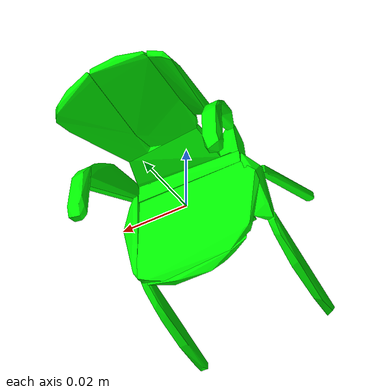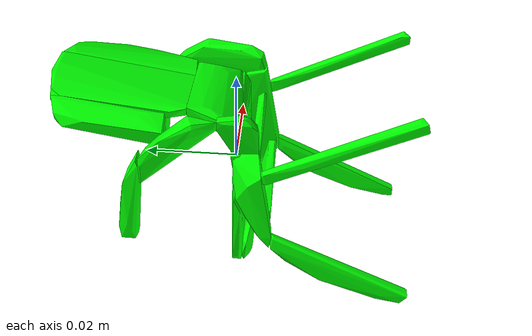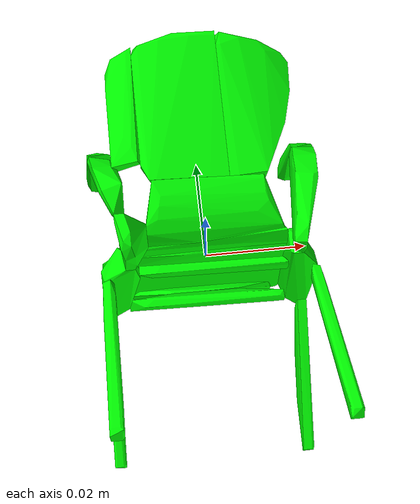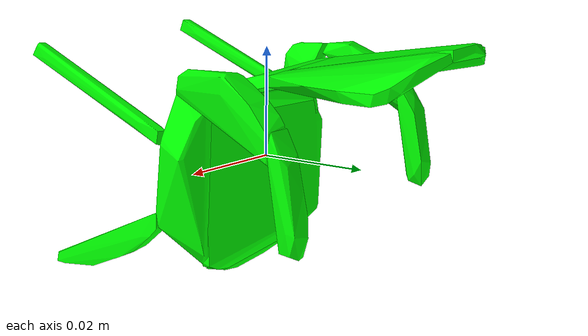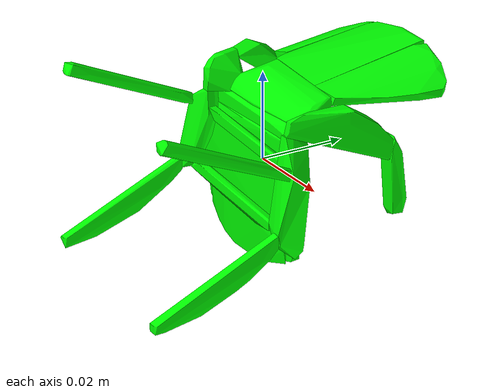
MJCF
<mujoco model="shapenet29-3">
  <asset>
    <mesh file="meshes/shapenet29-3/shapenet29-3_0.stl" name="shapenet29-3_0" scale="0.1 0.1 0.1"/>
    <mesh file="meshes/shapenet29-3/shapenet29-3_1.stl" name="shapenet29-3_1" scale="0.1 0.1 0.1"/>
    <mesh file="meshes/shapenet29-3/shapenet29-3_2.stl" name="shapenet29-3_2" scale="0.1 0.1 0.1"/>
    <mesh file="meshes/shapenet29-3/shapenet29-3_3.stl" name="shapenet29-3_3" scale="0.1 0.1 0.1"/>
    <mesh file="meshes/shapenet29-3/shapenet29-3_4.stl" name="shapenet29-3_4" scale="0.1 0.1 0.1"/>
    <mesh file="meshes/shapenet29-3/shapenet29-3_5.stl" name="shapenet29-3_5" scale="0.1 0.1 0.1"/>
    <mesh file="meshes/shapenet29-3/shapenet29-3_6.stl" name="shapenet29-3_6" scale="0.1 0.1 0.1"/>
    <mesh file="meshes/shapenet29-3/shapenet29-3_7.stl" name="shapenet29-3_7" scale="0.1 0.1 0.1"/>
    <mesh file="meshes/shapenet29-3/shapenet29-3_8.stl" name="shapenet29-3_8" scale="0.1 0.1 0.1"/>
    <mesh file="meshes/shapenet29-3/shapenet29-3_9.stl" name="shapenet29-3_9" scale="0.1 0.1 0.1"/>
    <mesh file="meshes/shapenet29-3/shapenet29-3_10.stl" name="shapenet29-3_10" scale="0.1 0.1 0.1"/>
    <mesh file="meshes/shapenet29-3/shapenet29-3_11.stl" name="shapenet29-3_11" scale="0.1 0.1 0.1"/>
    <mesh file="meshes/shapenet29-3/shapenet29-3_12.stl" name="shapenet29-3_12" scale="0.1 0.1 0.1"/>
    <mesh file="meshes/shapenet29-3/shapenet29-3_13.stl" name="shapenet29-3_13" scale="0.1 0.1 0.1"/>
    <mesh file="meshes/shapenet29-3/shapenet29-3_14.stl" name="shapenet29-3_14" scale="0.1 0.1 0.1"/>
    <mesh file="meshes/shapenet29-3/shapenet29-3_15.stl" name="shapenet29-3_15" scale="0.1 0.1 0.1"/>
    <mesh file="meshes/shapenet29-3/shapenet29-3_16.stl" name="shapenet29-3_16" scale="0.1 0.1 0.1"/>
    <mesh file="meshes/shapenet29-3/shapenet29-3_17.stl" name="shapenet29-3_17" scale="0.1 0.1 0.1"/>
    <mesh file="meshes/shapenet29-3/shapenet29-3_18.stl" name="shapenet29-3_18" scale="0.1 0.1 0.1"/>
    <mesh file="meshes/shapenet29-3/shapenet29-3_19.stl" name="shapenet29-3_19" scale="0.1 0.1 0.1"/>
  </asset>
  <worldbody>
    <body>
      <body name="collision">
        <geom pos="0 0 0" mesh="shapenet29-3_0" type="mesh" solimp="0.998 0.998 0.001" solref="0.001 1" density="100" friction="0.95 0.3 0.1" rgba="0 1 0 1" group="1" condim="4"/>
        <geom pos="0 0 0" mesh="shapenet29-3_1" type="mesh" solimp="0.998 0.998 0.001" solref="0.001 1" density="100" friction="0.95 0.3 0.1" rgba="0 1 0 1" group="1" condim="4"/>
        <geom pos="0 0 0" mesh="shapenet29-3_2" type="mesh" solimp="0.998 0.998 0.001" solref="0.001 1" density="100" friction="0.95 0.3 0.1" rgba="0 1 0 1" group="1" condim="4"/>
        <geom pos="0 0 0" mesh="shapenet29-3_3" type="mesh" solimp="0.998 0.998 0.001" solref="0.001 1" density="100" friction="0.95 0.3 0.1" rgba="0 1 0 1" group="1" condim="4"/>
        <geom pos="0 0 0" mesh="shapenet29-3_4" type="mesh" solimp="0.998 0.998 0.001" solref="0.001 1" density="100" friction="0.95 0.3 0.1" rgba="0 1 0 1" group="1" condim="4"/>
        <geom pos="0 0 0" mesh="shapenet29-3_5" type="mesh" solimp="0.998 0.998 0.001" solref="0.001 1" density="100" friction="0.95 0.3 0.1" rgba="0 1 0 1" group="1" condim="4"/>
        <geom pos="0 0 0" mesh="shapenet29-3_6" type="mesh" solimp="0.998 0.998 0.001" solref="0.001 1" density="100" friction="0.95 0.3 0.1" rgba="0 1 0 1" group="1" condim="4"/>
        <geom pos="0 0 0" mesh="shapenet29-3_7" type="mesh" solimp="0.998 0.998 0.001" solref="0.001 1" density="100" friction="0.95 0.3 0.1" rgba="0 1 0 1" group="1" condim="4"/>
        <geom pos="0 0 0" mesh="shapenet29-3_8" type="mesh" solimp="0.998 0.998 0.001" solref="0.001 1" density="100" friction="0.95 0.3 0.1" rgba="0 1 0 1" group="1" condim="4"/>
        <geom pos="0 0 0" mesh="shapenet29-3_9" type="mesh" solimp="0.998 0.998 0.001" solref="0.001 1" density="100" friction="0.95 0.3 0.1" rgba="0 1 0 1" group="1" condim="4"/>
        <geom pos="0 0 0" mesh="shapenet29-3_10" type="mesh" solimp="0.998 0.998 0.001" solref="0.001 1" density="100" friction="0.95 0.3 0.1" rgba="0 1 0 1" group="1" condim="4"/>
        <geom pos="0 0 0" mesh="shapenet29-3_11" type="mesh" solimp="0.998 0.998 0.001" solref="0.001 1" density="100" friction="0.95 0.3 0.1" rgba="0 1 0 1" group="1" condim="4"/>
        <geom pos="0 0 0" mesh="shapenet29-3_12" type="mesh" solimp="0.998 0.998 0.001" solref="0.001 1" density="100" friction="0.95 0.3 0.1" rgba="0 1 0 1" group="1" condim="4"/>
        <geom pos="0 0 0" mesh="shapenet29-3_13" type="mesh" solimp="0.998 0.998 0.001" solref="0.001 1" density="100" friction="0.95 0.3 0.1" rgba="0 1 0 1" group="1" condim="4"/>
        <geom pos="0 0 0" mesh="shapenet29-3_14" type="mesh" solimp="0.998 0.998 0.001" solref="0.001 1" density="100" friction="0.95 0.3 0.1" rgba="0 1 0 1" group="1" condim="4"/>
        <geom pos="0 0 0" mesh="shapenet29-3_15" type="mesh" solimp="0.998 0.998 0.001" solref="0.001 1" density="100" friction="0.95 0.3 0.1" rgba="0 1 0 1" group="1" condim="4"/>
        <geom pos="0 0 0" mesh="shapenet29-3_16" type="mesh" solimp="0.998 0.998 0.001" solref="0.001 1" density="100" friction="0.95 0.3 0.1" rgba="0 1 0 1" group="1" condim="4"/>
        <geom pos="0 0 0" mesh="shapenet29-3_17" type="mesh" solimp="0.998 0.998 0.001" solref="0.001 1" density="100" friction="0.95 0.3 0.1" rgba="0 1 0 1" group="1" condim="4"/>
        <geom pos="0 0 0" mesh="shapenet29-3_18" type="mesh" solimp="0.998 0.998 0.001" solref="0.001 1" density="100" friction="0.95 0.3 0.1" rgba="0 1 0 1" group="1" condim="4"/>
        <geom pos="0 0 0" mesh="shapenet29-3_19" type="mesh" solimp="0.998 0.998 0.001" solref="0.001 1" density="100" friction="0.95 0.3 0.1" rgba="0 1 0 1" group="1" condim="4"/>
      </body>
      <body name="visual">
        <geom pos="0 0 0" mesh="shapenet29-3_0" type="mesh" rgba="0 1 0 1" conaffinity="0" contype="0" group="0" mass="0.0001"/>
        <geom pos="0 0 0" mesh="shapenet29-3_1" type="mesh" rgba="0 1 0 1" conaffinity="0" contype="0" group="0" mass="0.0001"/>
        <geom pos="0 0 0" mesh="shapenet29-3_2" type="mesh" rgba="0 1 0 1" conaffinity="0" contype="0" group="0" mass="0.0001"/>
        <geom pos="0 0 0" mesh="shapenet29-3_3" type="mesh" rgba="0 1 0 1" conaffinity="0" contype="0" group="0" mass="0.0001"/>
        <geom pos="0 0 0" mesh="shapenet29-3_4" type="mesh" rgba="0 1 0 1" conaffinity="0" contype="0" group="0" mass="0.0001"/>
        <geom pos="0 0 0" mesh="shapenet29-3_5" type="mesh" rgba="0 1 0 1" conaffinity="0" contype="0" group="0" mass="0.0001"/>
        <geom pos="0 0 0" mesh="shapenet29-3_6" type="mesh" rgba="0 1 0 1" conaffinity="0" contype="0" group="0" mass="0.0001"/>
        <geom pos="0 0 0" mesh="shapenet29-3_7" type="mesh" rgba="0 1 0 1" conaffinity="0" contype="0" group="0" mass="0.0001"/>
        <geom pos="0 0 0" mesh="shapenet29-3_8" type="mesh" rgba="0 1 0 1" conaffinity="0" contype="0" group="0" mass="0.0001"/>
        <geom pos="0 0 0" mesh="shapenet29-3_9" type="mesh" rgba="0 1 0 1" conaffinity="0" contype="0" group="0" mass="0.0001"/>
        <geom pos="0 0 0" mesh="shapenet29-3_10" type="mesh" rgba="0 1 0 1" conaffinity="0" contype="0" group="0" mass="0.0001"/>
        <geom pos="0 0 0" mesh="shapenet29-3_11" type="mesh" rgba="0 1 0 1" conaffinity="0" contype="0" group="0" mass="0.0001"/>
        <geom pos="0 0 0" mesh="shapenet29-3_12" type="mesh" rgba="0 1 0 1" conaffinity="0" contype="0" group="0" mass="0.0001"/>
        <geom pos="0 0 0" mesh="shapenet29-3_13" type="mesh" rgba="0 1 0 1" conaffinity="0" contype="0" group="0" mass="0.0001"/>
        <geom pos="0 0 0" mesh="shapenet29-3_14" type="mesh" rgba="0 1 0 1" conaffinity="0" contype="0" group="0" mass="0.0001"/>
        <geom pos="0 0 0" mesh="shapenet29-3_15" type="mesh" rgba="0 1 0 1" conaffinity="0" contype="0" group="0" mass="0.0001"/>
        <geom pos="0 0 0" mesh="shapenet29-3_16" type="mesh" rgba="0 1 0 1" conaffinity="0" contype="0" group="0" mass="0.0001"/>
        <geom pos="0 0 0" mesh="shapenet29-3_17" type="mesh" rgba="0 1 0 1" conaffinity="0" contype="0" group="0" mass="0.0001"/>
        <geom pos="0 0 0" mesh="shapenet29-3_18" type="mesh" rgba="0 1 0 1" conaffinity="0" contype="0" group="0" mass="0.0001"/>
        <geom pos="0 0 0" mesh="shapenet29-3_19" type="mesh" rgba="0 1 0 1" conaffinity="0" contype="0" group="0" mass="0.0001"/>
      </body>
      <site rgba="0 0 0 0" size="0.005" pos="0 0 -0.06" name="bottom_site"/>
      <site rgba="0 0 0 0" size="0.005" pos="0 0 0.04" name="top_site"/>
      <site rgba="0 0 0 0" size="0.005" pos="0.025 0.025 0" name="horizontal_radius_site"/>
    </body>
  </worldbody>
</mujoco>
